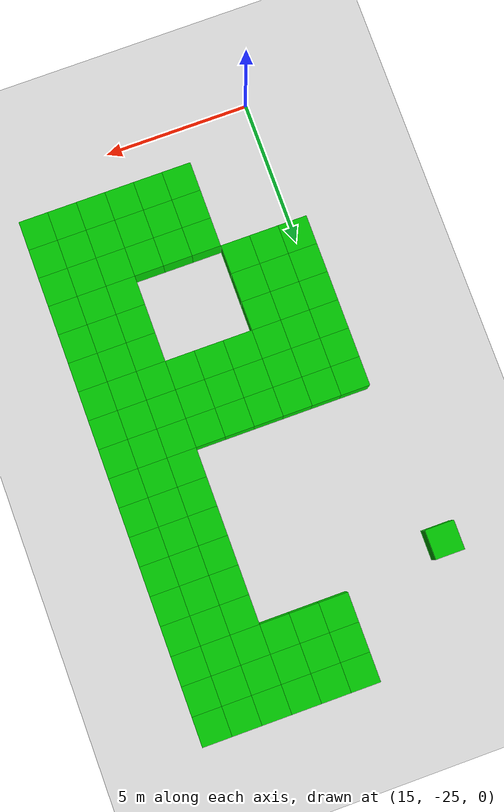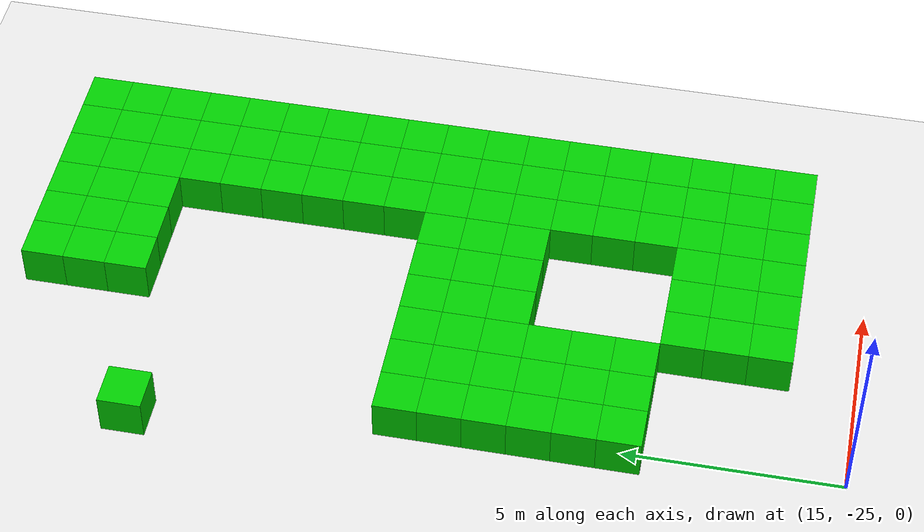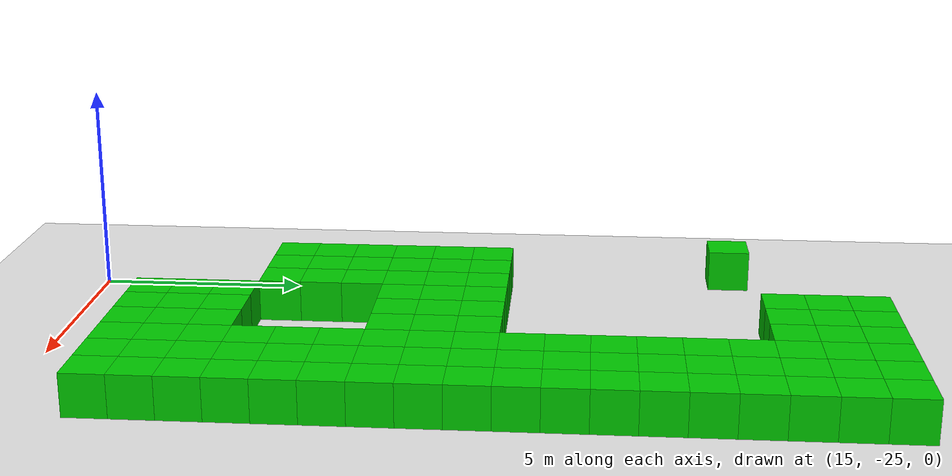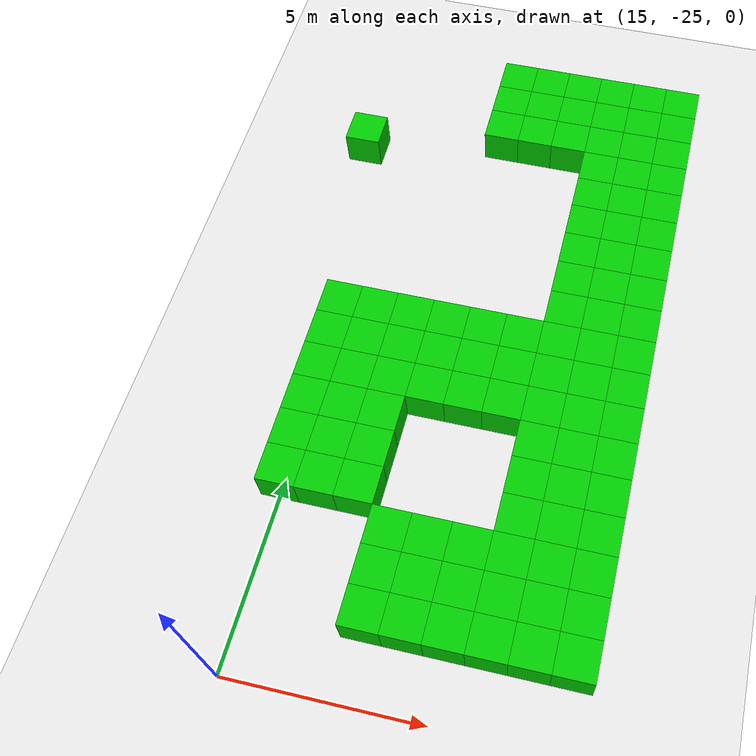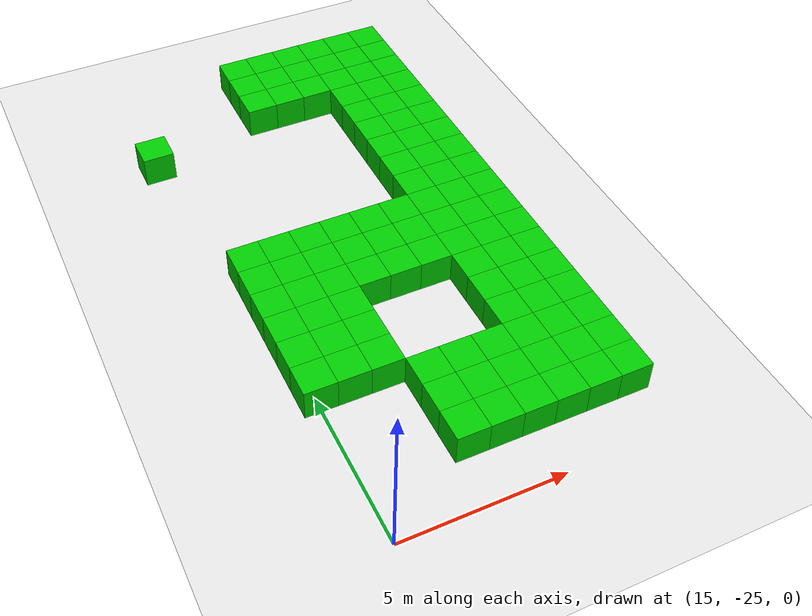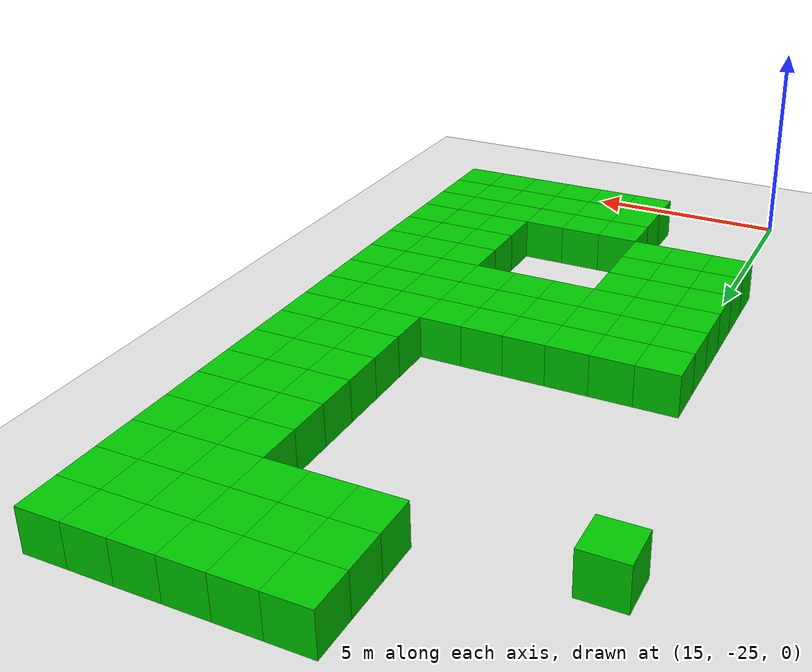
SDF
<sdf version="1.6">
 <world name="generated_maze">
  <model name="ground_plane">
   <static>true</static>
   <link name="link">
    <collision name="collision">
     <geometry><plane><normal>0 0 1</normal><size>100 100</size></plane></geometry>
    </collision>
    <visual name="visual">
     <geometry><plane><normal>0 0 1</normal><size>100 100</size></plane></geometry>
     <material>
      <ambient>0.9 0.9 0.9 1</ambient>
      <diffuse>0.9 0.9 0.9 1</diffuse>
      <specular>0.3 0.3 0.3 1</specular>
     </material>
    </visual>
   </link>
  </model>
  <model name="wall_30_42">
   <static>true</static>
   <pose>18 -6 0.5 0 0 0</pose>
   <link name="link">
    <collision name="collision"><geometry><box><size>1 1 1</size></box></geometry></collision>
    <visual name="visual">
     <geometry><box><size>1 1 1</size></box></geometry>
     <material>
      <ambient>0.0 0.8 0.0 1</ambient>
      <diffuse>0.0 0.8 0.0 1</diffuse>
      <specular>0.1 0.1 0.1 1</specular>
     </material>
    </visual>
   </link>
  </model>
  <model name="wall_30_43">
   <static>true</static>
   <pose>19 -6 0.5 0 0 0</pose>
   <link name="link">
    <collision name="collision"><geometry><box><size>1 1 1</size></box></geometry></collision>
    <visual name="visual">
     <geometry><box><size>1 1 1</size></box></geometry>
     <material>
      <ambient>0.0 0.8 0.0 1</ambient>
      <diffuse>0.0 0.8 0.0 1</diffuse>
      <specular>0.1 0.1 0.1 1</specular>
     </material>
    </visual>
   </link>
  </model>
  <model name="wall_30_44">
   <static>true</static>
   <pose>20 -6 0.5 0 0 0</pose>
   <link name="link">
    <collision name="collision"><geometry><box><size>1 1 1</size></box></geometry></collision>
    <visual name="visual">
     <geometry><box><size>1 1 1</size></box></geometry>
     <material>
      <ambient>0.0 0.8 0.0 1</ambient>
      <diffuse>0.0 0.8 0.0 1</diffuse>
      <specular>0.1 0.1 0.1 1</specular>
     </material>
    </visual>
   </link>
  </model>
  <model name="wall_30_45">
   <static>true</static>
   <pose>21 -6 0.5 0 0 0</pose>
   <link name="link">
    <collision name="collision"><geometry><box><size>1 1 1</size></box></geometry></collision>
    <visual name="visual">
     <geometry><box><size>1 1 1</size></box></geometry>
     <material>
      <ambient>0.0 0.8 0.0 1</ambient>
      <diffuse>0.0 0.8 0.0 1</diffuse>
      <specular>0.1 0.1 0.1 1</specular>
     </material>
    </visual>
   </link>
  </model>
  <model name="wall_30_46">
   <static>true</static>
   <pose>22 -6 0.5 0 0 0</pose>
   <link name="link">
    <collision name="collision"><geometry><box><size>1 1 1</size></box></geometry></collision>
    <visual name="visual">
     <geometry><box><size>1 1 1</size></box></geometry>
     <material>
      <ambient>0.0 0.8 0.0 1</ambient>
      <diffuse>0.0 0.8 0.0 1</diffuse>
      <specular>0.1 0.1 0.1 1</specular>
     </material>
    </visual>
   </link>
  </model>
  <model name="wall_30_47">
   <static>true</static>
   <pose>23 -6 0.5 0 0 0</pose>
   <link name="link">
    <collision name="collision"><geometry><box><size>1 1 1</size></box></geometry></collision>
    <visual name="visual">
     <geometry><box><size>1 1 1</size></box></geometry>
     <material>
      <ambient>0.0 0.8 0.0 1</ambient>
      <diffuse>0.0 0.8 0.0 1</diffuse>
      <specular>0.1 0.1 0.1 1</specular>
     </material>
    </visual>
   </link>
  </model>
  <model name="wall_31_42">
   <static>true</static>
   <pose>18 -7 0.5 0 0 0</pose>
   <link name="link">
    <collision name="collision"><geometry><box><size>1 1 1</size></box></geometry></collision>
    <visual name="visual">
     <geometry><box><size>1 1 1</size></box></geometry>
     <material>
      <ambient>0.0 0.8 0.0 1</ambient>
      <diffuse>0.0 0.8 0.0 1</diffuse>
      <specular>0.1 0.1 0.1 1</specular>
     </material>
    </visual>
   </link>
  </model>
  <model name="wall_31_43">
   <static>true</static>
   <pose>19 -7 0.5 0 0 0</pose>
   <link name="link">
    <collision name="collision"><geometry><box><size>1 1 1</size></box></geometry></collision>
    <visual name="visual">
     <geometry><box><size>1 1 1</size></box></geometry>
     <material>
      <ambient>0.0 0.8 0.0 1</ambient>
      <diffuse>0.0 0.8 0.0 1</diffuse>
      <specular>0.1 0.1 0.1 1</specular>
     </material>
    </visual>
   </link>
  </model>
  <model name="wall_31_44">
   <static>true</static>
   <pose>20 -7 0.5 0 0 0</pose>
   <link name="link">
    <collision name="collision"><geometry><box><size>1 1 1</size></box></geometry></collision>
    <visual name="visual">
     <geometry><box><size>1 1 1</size></box></geometry>
     <material>
      <ambient>0.0 0.8 0.0 1</ambient>
      <diffuse>0.0 0.8 0.0 1</diffuse>
      <specular>0.1 0.1 0.1 1</specular>
     </material>
    </visual>
   </link>
  </model>
  <model name="wall_31_45">
   <static>true</static>
   <pose>21 -7 0.5 0 0 0</pose>
   <link name="link">
    <collision name="collision"><geometry><box><size>1 1 1</size></box></geometry></collision>
    <visual name="visual">
     <geometry><box><size>1 1 1</size></box></geometry>
     <material>
      <ambient>0.0 0.8 0.0 1</ambient>
      <diffuse>0.0 0.8 0.0 1</diffuse>
      <specular>0.1 0.1 0.1 1</specular>
     </material>
    </visual>
   </link>
  </model>
  <model name="wall_31_46">
   <static>true</static>
   <pose>22 -7 0.5 0 0 0</pose>
   <link name="link">
    <collision name="collision"><geometry><box><size>1 1 1</size></box></geometry></collision>
    <visual name="visual">
     <geometry><box><size>1 1 1</size></box></geometry>
     <material>
      <ambient>0.0 0.8 0.0 1</ambient>
      <diffuse>0.0 0.8 0.0 1</diffuse>
      <specular>0.1 0.1 0.1 1</specular>
     </material>
    </visual>
   </link>
  </model>
  <model name="wall_31_47">
   <static>true</static>
   <pose>23 -7 0.5 0 0 0</pose>
   <link name="link">
    <collision name="collision"><geometry><box><size>1 1 1</size></box></geometry></collision>
    <visual name="visual">
     <geometry><box><size>1 1 1</size></box></geometry>
     <material>
      <ambient>0.0 0.8 0.0 1</ambient>
      <diffuse>0.0 0.8 0.0 1</diffuse>
      <specular>0.1 0.1 0.1 1</specular>
     </material>
    </visual>
   </link>
  </model>
  <model name="wall_32_42">
   <static>true</static>
   <pose>18 -8 0.5 0 0 0</pose>
   <link name="link">
    <collision name="collision"><geometry><box><size>1 1 1</size></box></geometry></collision>
    <visual name="visual">
     <geometry><box><size>1 1 1</size></box></geometry>
     <material>
      <ambient>0.0 0.8 0.0 1</ambient>
      <diffuse>0.0 0.8 0.0 1</diffuse>
      <specular>0.1 0.1 0.1 1</specular>
     </material>
    </visual>
   </link>
  </model>
  <model name="wall_32_43">
   <static>true</static>
   <pose>19 -8 0.5 0 0 0</pose>
   <link name="link">
    <collision name="collision"><geometry><box><size>1 1 1</size></box></geometry></collision>
    <visual name="visual">
     <geometry><box><size>1 1 1</size></box></geometry>
     <material>
      <ambient>0.0 0.8 0.0 1</ambient>
      <diffuse>0.0 0.8 0.0 1</diffuse>
      <specular>0.1 0.1 0.1 1</specular>
     </material>
    </visual>
   </link>
  </model>
  <model name="wall_32_44">
   <static>true</static>
   <pose>20 -8 0.5 0 0 0</pose>
   <link name="link">
    <collision name="collision"><geometry><box><size>1 1 1</size></box></geometry></collision>
    <visual name="visual">
     <geometry><box><size>1 1 1</size></box></geometry>
     <material>
      <ambient>0.0 0.8 0.0 1</ambient>
      <diffuse>0.0 0.8 0.0 1</diffuse>
      <specular>0.1 0.1 0.1 1</specular>
     </material>
    </visual>
   </link>
  </model>
  <model name="wall_32_45">
   <static>true</static>
   <pose>21 -8 0.5 0 0 0</pose>
   <link name="link">
    <collision name="collision"><geometry><box><size>1 1 1</size></box></geometry></collision>
    <visual name="visual">
     <geometry><box><size>1 1 1</size></box></geometry>
     <material>
      <ambient>0.0 0.8 0.0 1</ambient>
      <diffuse>0.0 0.8 0.0 1</diffuse>
      <specular>0.1 0.1 0.1 1</specular>
     </material>
    </visual>
   </link>
  </model>
  <model name="wall_32_46">
   <static>true</static>
   <pose>22 -8 0.5 0 0 0</pose>
   <link name="link">
    <collision name="collision"><geometry><box><size>1 1 1</size></box></geometry></collision>
    <visual name="visual">
     <geometry><box><size>1 1 1</size></box></geometry>
     <material>
      <ambient>0.0 0.8 0.0 1</ambient>
      <diffuse>0.0 0.8 0.0 1</diffuse>
      <specular>0.1 0.1 0.1 1</specular>
     </material>
    </visual>
   </link>
  </model>
  <model name="wall_32_47">
   <static>true</static>
   <pose>23 -8 0.5 0 0 0</pose>
   <link name="link">
    <collision name="collision"><geometry><box><size>1 1 1</size></box></geometry></collision>
    <visual name="visual">
     <geometry><box><size>1 1 1</size></box></geometry>
     <material>
      <ambient>0.0 0.8 0.0 1</ambient>
      <diffuse>0.0 0.8 0.0 1</diffuse>
      <specular>0.1 0.1 0.1 1</specular>
     </material>
    </visual>
   </link>
  </model>
  <model name="wall_33_38">
   <static>true</static>
   <pose>14 -9 0.5 0 0 0</pose>
   <link name="link">
    <collision name="collision"><geometry><box><size>1 1 1</size></box></geometry></collision>
    <visual name="visual">
     <geometry><box><size>1 1 1</size></box></geometry>
     <material>
      <ambient>0.0 0.8 0.0 1</ambient>
      <diffuse>0.0 0.8 0.0 1</diffuse>
      <specular>0.1 0.1 0.1 1</specular>
     </material>
    </visual>
   </link>
  </model>
  <model name="wall_33_45">
   <static>true</static>
   <pose>21 -9 0.5 0 0 0</pose>
   <link name="link">
    <collision name="collision"><geometry><box><size>1 1 1</size></box></geometry></collision>
    <visual name="visual">
     <geometry><box><size>1 1 1</size></box></geometry>
     <material>
      <ambient>0.0 0.8 0.0 1</ambient>
      <diffuse>0.0 0.8 0.0 1</diffuse>
      <specular>0.1 0.1 0.1 1</specular>
     </material>
    </visual>
   </link>
  </model>
  <model name="wall_33_46">
   <static>true</static>
   <pose>22 -9 0.5 0 0 0</pose>
   <link name="link">
    <collision name="collision"><geometry><box><size>1 1 1</size></box></geometry></collision>
    <visual name="visual">
     <geometry><box><size>1 1 1</size></box></geometry>
     <material>
      <ambient>0.0 0.8 0.0 1</ambient>
      <diffuse>0.0 0.8 0.0 1</diffuse>
      <specular>0.1 0.1 0.1 1</specular>
     </material>
    </visual>
   </link>
  </model>
  <model name="wall_33_47">
   <static>true</static>
   <pose>23 -9 0.5 0 0 0</pose>
   <link name="link">
    <collision name="collision"><geometry><box><size>1 1 1</size></box></geometry></collision>
    <visual name="visual">
     <geometry><box><size>1 1 1</size></box></geometry>
     <material>
      <ambient>0.0 0.8 0.0 1</ambient>
      <diffuse>0.0 0.8 0.0 1</diffuse>
      <specular>0.1 0.1 0.1 1</specular>
     </material>
    </visual>
   </link>
  </model>
  <model name="wall_34_45">
   <static>true</static>
   <pose>21 -10 0.5 0 0 0</pose>
   <link name="link">
    <collision name="collision"><geometry><box><size>1 1 1</size></box></geometry></collision>
    <visual name="visual">
     <geometry><box><size>1 1 1</size></box></geometry>
     <material>
      <ambient>0.0 0.8 0.0 1</ambient>
      <diffuse>0.0 0.8 0.0 1</diffuse>
      <specular>0.1 0.1 0.1 1</specular>
     </material>
    </visual>
   </link>
  </model>
  <model name="wall_34_46">
   <static>true</static>
   <pose>22 -10 0.5 0 0 0</pose>
   <link name="link">
    <collision name="collision"><geometry><box><size>1 1 1</size></box></geometry></collision>
    <visual name="visual">
     <geometry><box><size>1 1 1</size></box></geometry>
     <material>
      <ambient>0.0 0.8 0.0 1</ambient>
      <diffuse>0.0 0.8 0.0 1</diffuse>
      <specular>0.1 0.1 0.1 1</specular>
     </material>
    </visual>
   </link>
  </model>
  <model name="wall_34_47">
   <static>true</static>
   <pose>23 -10 0.5 0 0 0</pose>
   <link name="link">
    <collision name="collision"><geometry><box><size>1 1 1</size></box></geometry></collision>
    <visual name="visual">
     <geometry><box><size>1 1 1</size></box></geometry>
     <material>
      <ambient>0.0 0.8 0.0 1</ambient>
      <diffuse>0.0 0.8 0.0 1</diffuse>
      <specular>0.1 0.1 0.1 1</specular>
     </material>
    </visual>
   </link>
  </model>
  <model name="wall_35_45">
   <static>true</static>
   <pose>21 -11 0.5 0 0 0</pose>
   <link name="link">
    <collision name="collision"><geometry><box><size>1 1 1</size></box></geometry></collision>
    <visual name="visual">
     <geometry><box><size>1 1 1</size></box></geometry>
     <material>
      <ambient>0.0 0.8 0.0 1</ambient>
      <diffuse>0.0 0.8 0.0 1</diffuse>
      <specular>0.1 0.1 0.1 1</specular>
     </material>
    </visual>
   </link>
  </model>
  <model name="wall_35_46">
   <static>true</static>
   <pose>22 -11 0.5 0 0 0</pose>
   <link name="link">
    <collision name="collision"><geometry><box><size>1 1 1</size></box></geometry></collision>
    <visual name="visual">
     <geometry><box><size>1 1 1</size></box></geometry>
     <material>
      <ambient>0.0 0.8 0.0 1</ambient>
      <diffuse>0.0 0.8 0.0 1</diffuse>
      <specular>0.1 0.1 0.1 1</specular>
     </material>
    </visual>
   </link>
  </model>
  <model name="wall_35_47">
   <static>true</static>
   <pose>23 -11 0.5 0 0 0</pose>
   <link name="link">
    <collision name="collision"><geometry><box><size>1 1 1</size></box></geometry></collision>
    <visual name="visual">
     <geometry><box><size>1 1 1</size></box></geometry>
     <material>
      <ambient>0.0 0.8 0.0 1</ambient>
      <diffuse>0.0 0.8 0.0 1</diffuse>
      <specular>0.1 0.1 0.1 1</specular>
     </material>
    </visual>
   </link>
  </model>
  <model name="wall_36_45">
   <static>true</static>
   <pose>21 -12 0.5 0 0 0</pose>
   <link name="link">
    <collision name="collision"><geometry><box><size>1 1 1</size></box></geometry></collision>
    <visual name="visual">
     <geometry><box><size>1 1 1</size></box></geometry>
     <material>
      <ambient>0.0 0.8 0.0 1</ambient>
      <diffuse>0.0 0.8 0.0 1</diffuse>
      <specular>0.1 0.1 0.1 1</specular>
     </material>
    </visual>
   </link>
  </model>
  <model name="wall_36_46">
   <static>true</static>
   <pose>22 -12 0.5 0 0 0</pose>
   <link name="link">
    <collision name="collision"><geometry><box><size>1 1 1</size></box></geometry></collision>
    <visual name="visual">
     <geometry><box><size>1 1 1</size></box></geometry>
     <material>
      <ambient>0.0 0.8 0.0 1</ambient>
      <diffuse>0.0 0.8 0.0 1</diffuse>
      <specular>0.1 0.1 0.1 1</specular>
     </material>
    </visual>
   </link>
  </model>
  <model name="wall_36_47">
   <static>true</static>
   <pose>23 -12 0.5 0 0 0</pose>
   <link name="link">
    <collision name="collision"><geometry><box><size>1 1 1</size></box></geometry></collision>
    <visual name="visual">
     <geometry><box><size>1 1 1</size></box></geometry>
     <material>
      <ambient>0.0 0.8 0.0 1</ambient>
      <diffuse>0.0 0.8 0.0 1</diffuse>
      <specular>0.1 0.1 0.1 1</specular>
     </material>
    </visual>
   </link>
  </model>
  <model name="wall_37_45">
   <static>true</static>
   <pose>21 -13 0.5 0 0 0</pose>
   <link name="link">
    <collision name="collision"><geometry><box><size>1 1 1</size></box></geometry></collision>
    <visual name="visual">
     <geometry><box><size>1 1 1</size></box></geometry>
     <material>
      <ambient>0.0 0.8 0.0 1</ambient>
      <diffuse>0.0 0.8 0.0 1</diffuse>
      <specular>0.1 0.1 0.1 1</specular>
     </material>
    </visual>
   </link>
  </model>
  <model name="wall_37_46">
   <static>true</static>
   <pose>22 -13 0.5 0 0 0</pose>
   <link name="link">
    <collision name="collision"><geometry><box><size>1 1 1</size></box></geometry></collision>
    <visual name="visual">
     <geometry><box><size>1 1 1</size></box></geometry>
     <material>
      <ambient>0.0 0.8 0.0 1</ambient>
      <diffuse>0.0 0.8 0.0 1</diffuse>
      <specular>0.1 0.1 0.1 1</specular>
     </material>
    </visual>
   </link>
  </model>
  <model name="wall_37_47">
   <static>true</static>
   <pose>23 -13 0.5 0 0 0</pose>
   <link name="link">
    <collision name="collision"><geometry><box><size>1 1 1</size></box></geometry></collision>
    <visual name="visual">
     <geometry><box><size>1 1 1</size></box></geometry>
     <material>
      <ambient>0.0 0.8 0.0 1</ambient>
      <diffuse>0.0 0.8 0.0 1</diffuse>
      <specular>0.1 0.1 0.1 1</specular>
     </material>
    </visual>
   </link>
  </model>
  <model name="wall_38_45">
   <static>true</static>
   <pose>21 -14 0.5 0 0 0</pose>
   <link name="link">
    <collision name="collision"><geometry><box><size>1 1 1</size></box></geometry></collision>
    <visual name="visual">
     <geometry><box><size>1 1 1</size></box></geometry>
     <material>
      <ambient>0.0 0.8 0.0 1</ambient>
      <diffuse>0.0 0.8 0.0 1</diffuse>
      <specular>0.1 0.1 0.1 1</specular>
     </material>
    </visual>
   </link>
  </model>
  <model name="wall_38_46">
   <static>true</static>
   <pose>22 -14 0.5 0 0 0</pose>
   <link name="link">
    <collision name="collision"><geometry><box><size>1 1 1</size></box></geometry></collision>
    <visual name="visual">
     <geometry><box><size>1 1 1</size></box></geometry>
     <material>
      <ambient>0.0 0.8 0.0 1</ambient>
      <diffuse>0.0 0.8 0.0 1</diffuse>
      <specular>0.1 0.1 0.1 1</specular>
     </material>
    </visual>
   </link>
  </model>
  <model name="wall_38_47">
   <static>true</static>
   <pose>23 -14 0.5 0 0 0</pose>
   <link name="link">
    <collision name="collision"><geometry><box><size>1 1 1</size></box></geometry></collision>
    <visual name="visual">
     <geometry><box><size>1 1 1</size></box></geometry>
     <material>
      <ambient>0.0 0.8 0.0 1</ambient>
      <diffuse>0.0 0.8 0.0 1</diffuse>
      <specular>0.1 0.1 0.1 1</specular>
     </material>
    </visual>
   </link>
  </model>
  <model name="wall_39_39">
   <static>true</static>
   <pose>15 -15 0.5 0 0 0</pose>
   <link name="link">
    <collision name="collision"><geometry><box><size>1 1 1</size></box></geometry></collision>
    <visual name="visual">
     <geometry><box><size>1 1 1</size></box></geometry>
     <material>
      <ambient>0.0 0.8 0.0 1</ambient>
      <diffuse>0.0 0.8 0.0 1</diffuse>
      <specular>0.1 0.1 0.1 1</specular>
     </material>
    </visual>
   </link>
  </model>
  <model name="wall_39_40">
   <static>true</static>
   <pose>16 -15 0.5 0 0 0</pose>
   <link name="link">
    <collision name="collision"><geometry><box><size>1 1 1</size></box></geometry></collision>
    <visual name="visual">
     <geometry><box><size>1 1 1</size></box></geometry>
     <material>
      <ambient>0.0 0.8 0.0 1</ambient>
      <diffuse>0.0 0.8 0.0 1</diffuse>
      <specular>0.1 0.1 0.1 1</specular>
     </material>
    </visual>
   </link>
  </model>
  <model name="wall_39_41">
   <static>true</static>
   <pose>17 -15 0.5 0 0 0</pose>
   <link name="link">
    <collision name="collision"><geometry><box><size>1 1 1</size></box></geometry></collision>
    <visual name="visual">
     <geometry><box><size>1 1 1</size></box></geometry>
     <material>
      <ambient>0.0 0.8 0.0 1</ambient>
      <diffuse>0.0 0.8 0.0 1</diffuse>
      <specular>0.1 0.1 0.1 1</specular>
     </material>
    </visual>
   </link>
  </model>
  <model name="wall_39_42">
   <static>true</static>
   <pose>18 -15 0.5 0 0 0</pose>
   <link name="link">
    <collision name="collision"><geometry><box><size>1 1 1</size></box></geometry></collision>
    <visual name="visual">
     <geometry><box><size>1 1 1</size></box></geometry>
     <material>
      <ambient>0.0 0.8 0.0 1</ambient>
      <diffuse>0.0 0.8 0.0 1</diffuse>
      <specular>0.1 0.1 0.1 1</specular>
     </material>
    </visual>
   </link>
  </model>
  <model name="wall_39_43">
   <static>true</static>
   <pose>19 -15 0.5 0 0 0</pose>
   <link name="link">
    <collision name="collision"><geometry><box><size>1 1 1</size></box></geometry></collision>
    <visual name="visual">
     <geometry><box><size>1 1 1</size></box></geometry>
     <material>
      <ambient>0.0 0.8 0.0 1</ambient>
      <diffuse>0.0 0.8 0.0 1</diffuse>
      <specular>0.1 0.1 0.1 1</specular>
     </material>
    </visual>
   </link>
  </model>
  <model name="wall_39_44">
   <static>true</static>
   <pose>20 -15 0.5 0 0 0</pose>
   <link name="link">
    <collision name="collision"><geometry><box><size>1 1 1</size></box></geometry></collision>
    <visual name="visual">
     <geometry><box><size>1 1 1</size></box></geometry>
     <material>
      <ambient>0.0 0.8 0.0 1</ambient>
      <diffuse>0.0 0.8 0.0 1</diffuse>
      <specular>0.1 0.1 0.1 1</specular>
     </material>
    </visual>
   </link>
  </model>
  <model name="wall_39_45">
   <static>true</static>
   <pose>21 -15 0.5 0 0 0</pose>
   <link name="link">
    <collision name="collision"><geometry><box><size>1 1 1</size></box></geometry></collision>
    <visual name="visual">
     <geometry><box><size>1 1 1</size></box></geometry>
     <material>
      <ambient>0.0 0.8 0.0 1</ambient>
      <diffuse>0.0 0.8 0.0 1</diffuse>
      <specular>0.1 0.1 0.1 1</specular>
     </material>
    </visual>
   </link>
  </model>
  <model name="wall_39_46">
   <static>true</static>
   <pose>22 -15 0.5 0 0 0</pose>
   <link name="link">
    <collision name="collision"><geometry><box><size>1 1 1</size></box></geometry></collision>
    <visual name="visual">
     <geometry><box><size>1 1 1</size></box></geometry>
     <material>
      <ambient>0.0 0.8 0.0 1</ambient>
      <diffuse>0.0 0.8 0.0 1</diffuse>
      <specular>0.1 0.1 0.1 1</specular>
     </material>
    </visual>
   </link>
  </model>
  <model name="wall_39_47">
   <static>true</static>
   <pose>23 -15 0.5 0 0 0</pose>
   <link name="link">
    <collision name="collision"><geometry><box><size>1 1 1</size></box></geometry></collision>
    <visual name="visual">
     <geometry><box><size>1 1 1</size></box></geometry>
     <material>
      <ambient>0.0 0.8 0.0 1</ambient>
      <diffuse>0.0 0.8 0.0 1</diffuse>
      <specular>0.1 0.1 0.1 1</specular>
     </material>
    </visual>
   </link>
  </model>
  <model name="wall_40_39">
   <static>true</static>
   <pose>15 -16 0.5 0 0 0</pose>
   <link name="link">
    <collision name="collision"><geometry><box><size>1 1 1</size></box></geometry></collision>
    <visual name="visual">
     <geometry><box><size>1 1 1</size></box></geometry>
     <material>
      <ambient>0.0 0.8 0.0 1</ambient>
      <diffuse>0.0 0.8 0.0 1</diffuse>
      <specular>0.1 0.1 0.1 1</specular>
     </material>
    </visual>
   </link>
  </model>
  <model name="wall_40_40">
   <static>true</static>
   <pose>16 -16 0.5 0 0 0</pose>
   <link name="link">
    <collision name="collision"><geometry><box><size>1 1 1</size></box></geometry></collision>
    <visual name="visual">
     <geometry><box><size>1 1 1</size></box></geometry>
     <material>
      <ambient>0.0 0.8 0.0 1</ambient>
      <diffuse>0.0 0.8 0.0 1</diffuse>
      <specular>0.1 0.1 0.1 1</specular>
     </material>
    </visual>
   </link>
  </model>
  <model name="wall_40_41">
   <static>true</static>
   <pose>17 -16 0.5 0 0 0</pose>
   <link name="link">
    <collision name="collision"><geometry><box><size>1 1 1</size></box></geometry></collision>
    <visual name="visual">
     <geometry><box><size>1 1 1</size></box></geometry>
     <material>
      <ambient>0.0 0.8 0.0 1</ambient>
      <diffuse>0.0 0.8 0.0 1</diffuse>
      <specular>0.1 0.1 0.1 1</specular>
     </material>
    </visual>
   </link>
  </model>
  <model name="wall_40_42">
   <static>true</static>
   <pose>18 -16 0.5 0 0 0</pose>
   <link name="link">
    <collision name="collision"><geometry><box><size>1 1 1</size></box></geometry></collision>
    <visual name="visual">
     <geometry><box><size>1 1 1</size></box></geometry>
     <material>
      <ambient>0.0 0.8 0.0 1</ambient>
      <diffuse>0.0 0.8 0.0 1</diffuse>
      <specular>0.1 0.1 0.1 1</specular>
     </material>
    </visual>
   </link>
  </model>
  <model name="wall_40_43">
   <static>true</static>
   <pose>19 -16 0.5 0 0 0</pose>
   <link name="link">
    <collision name="collision"><geometry><box><size>1 1 1</size></box></geometry></collision>
    <visual name="visual">
     <geometry><box><size>1 1 1</size></box></geometry>
     <material>
      <ambient>0.0 0.8 0.0 1</ambient>
      <diffuse>0.0 0.8 0.0 1</diffuse>
      <specular>0.1 0.1 0.1 1</specular>
     </material>
    </visual>
   </link>
  </model>
  <model name="wall_40_44">
   <static>true</static>
   <pose>20 -16 0.5 0 0 0</pose>
   <link name="link">
    <collision name="collision"><geometry><box><size>1 1 1</size></box></geometry></collision>
    <visual name="visual">
     <geometry><box><size>1 1 1</size></box></geometry>
     <material>
      <ambient>0.0 0.8 0.0 1</ambient>
      <diffuse>0.0 0.8 0.0 1</diffuse>
      <specular>0.1 0.1 0.1 1</specular>
     </material>
    </visual>
   </link>
  </model>
  <model name="wall_40_45">
   <static>true</static>
   <pose>21 -16 0.5 0 0 0</pose>
   <link name="link">
    <collision name="collision"><geometry><box><size>1 1 1</size></box></geometry></collision>
    <visual name="visual">
     <geometry><box><size>1 1 1</size></box></geometry>
     <material>
      <ambient>0.0 0.8 0.0 1</ambient>
      <diffuse>0.0 0.8 0.0 1</diffuse>
      <specular>0.1 0.1 0.1 1</specular>
     </material>
    </visual>
   </link>
  </model>
  <model name="wall_40_46">
   <static>true</static>
   <pose>22 -16 0.5 0 0 0</pose>
   <link name="link">
    <collision name="collision"><geometry><box><size>1 1 1</size></box></geometry></collision>
    <visual name="visual">
     <geometry><box><size>1 1 1</size></box></geometry>
     <material>
      <ambient>0.0 0.8 0.0 1</ambient>
      <diffuse>0.0 0.8 0.0 1</diffuse>
      <specular>0.1 0.1 0.1 1</specular>
     </material>
    </visual>
   </link>
  </model>
  <model name="wall_40_47">
   <static>true</static>
   <pose>23 -16 0.5 0 0 0</pose>
   <link name="link">
    <collision name="collision"><geometry><box><size>1 1 1</size></box></geometry></collision>
    <visual name="visual">
     <geometry><box><size>1 1 1</size></box></geometry>
     <material>
      <ambient>0.0 0.8 0.0 1</ambient>
      <diffuse>0.0 0.8 0.0 1</diffuse>
      <specular>0.1 0.1 0.1 1</specular>
     </material>
    </visual>
   </link>
  </model>
  <model name="wall_41_39">
   <static>true</static>
   <pose>15 -17 0.5 0 0 0</pose>
   <link name="link">
    <collision name="collision"><geometry><box><size>1 1 1</size></box></geometry></collision>
    <visual name="visual">
     <geometry><box><size>1 1 1</size></box></geometry>
     <material>
      <ambient>0.0 0.8 0.0 1</ambient>
      <diffuse>0.0 0.8 0.0 1</diffuse>
      <specular>0.1 0.1 0.1 1</specular>
     </material>
    </visual>
   </link>
  </model>
  <model name="wall_41_40">
   <static>true</static>
   <pose>16 -17 0.5 0 0 0</pose>
   <link name="link">
    <collision name="collision"><geometry><box><size>1 1 1</size></box></geometry></collision>
    <visual name="visual">
     <geometry><box><size>1 1 1</size></box></geometry>
     <material>
      <ambient>0.0 0.8 0.0 1</ambient>
      <diffuse>0.0 0.8 0.0 1</diffuse>
      <specular>0.1 0.1 0.1 1</specular>
     </material>
    </visual>
   </link>
  </model>
  <model name="wall_41_41">
   <static>true</static>
   <pose>17 -17 0.5 0 0 0</pose>
   <link name="link">
    <collision name="collision"><geometry><box><size>1 1 1</size></box></geometry></collision>
    <visual name="visual">
     <geometry><box><size>1 1 1</size></box></geometry>
     <material>
      <ambient>0.0 0.8 0.0 1</ambient>
      <diffuse>0.0 0.8 0.0 1</diffuse>
      <specular>0.1 0.1 0.1 1</specular>
     </material>
    </visual>
   </link>
  </model>
  <model name="wall_41_42">
   <static>true</static>
   <pose>18 -17 0.5 0 0 0</pose>
   <link name="link">
    <collision name="collision"><geometry><box><size>1 1 1</size></box></geometry></collision>
    <visual name="visual">
     <geometry><box><size>1 1 1</size></box></geometry>
     <material>
      <ambient>0.0 0.8 0.0 1</ambient>
      <diffuse>0.0 0.8 0.0 1</diffuse>
      <specular>0.1 0.1 0.1 1</specular>
     </material>
    </visual>
   </link>
  </model>
  <model name="wall_41_43">
   <static>true</static>
   <pose>19 -17 0.5 0 0 0</pose>
   <link name="link">
    <collision name="collision"><geometry><box><size>1 1 1</size></box></geometry></collision>
    <visual name="visual">
     <geometry><box><size>1 1 1</size></box></geometry>
     <material>
      <ambient>0.0 0.8 0.0 1</ambient>
      <diffuse>0.0 0.8 0.0 1</diffuse>
      <specular>0.1 0.1 0.1 1</specular>
     </material>
    </visual>
   </link>
  </model>
  <model name="wall_41_44">
   <static>true</static>
   <pose>20 -17 0.5 0 0 0</pose>
   <link name="link">
    <collision name="collision"><geometry><box><size>1 1 1</size></box></geometry></collision>
    <visual name="visual">
     <geometry><box><size>1 1 1</size></box></geometry>
     <material>
      <ambient>0.0 0.8 0.0 1</ambient>
      <diffuse>0.0 0.8 0.0 1</diffuse>
      <specular>0.1 0.1 0.1 1</specular>
     </material>
    </visual>
   </link>
  </model>
  <model name="wall_41_45">
   <static>true</static>
   <pose>21 -17 0.5 0 0 0</pose>
   <link name="link">
    <collision name="collision"><geometry><box><size>1 1 1</size></box></geometry></collision>
    <visual name="visual">
     <geometry><box><size>1 1 1</size></box></geometry>
     <material>
      <ambient>0.0 0.8 0.0 1</ambient>
      <diffuse>0.0 0.8 0.0 1</diffuse>
      <specular>0.1 0.1 0.1 1</specular>
     </material>
    </visual>
   </link>
  </model>
  <model name="wall_41_46">
   <static>true</static>
   <pose>22 -17 0.5 0 0 0</pose>
   <link name="link">
    <collision name="collision"><geometry><box><size>1 1 1</size></box></geometry></collision>
    <visual name="visual">
     <geometry><box><size>1 1 1</size></box></geometry>
     <material>
      <ambient>0.0 0.8 0.0 1</ambient>
      <diffuse>0.0 0.8 0.0 1</diffuse>
      <specular>0.1 0.1 0.1 1</specular>
     </material>
    </visual>
   </link>
  </model>
  <model name="wall_41_47">
   <static>true</static>
   <pose>23 -17 0.5 0 0 0</pose>
   <link name="link">
    <collision name="collision"><geometry><box><size>1 1 1</size></box></geometry></collision>
    <visual name="visual">
     <geometry><box><size>1 1 1</size></box></geometry>
     <material>
      <ambient>0.0 0.8 0.0 1</ambient>
      <diffuse>0.0 0.8 0.0 1</diffuse>
      <specular>0.1 0.1 0.1 1</specular>
     </material>
    </visual>
   </link>
  </model>
  <model name="wall_42_39">
   <static>true</static>
   <pose>15 -18 0.5 0 0 0</pose>
   <link name="link">
    <collision name="collision"><geometry><box><size>1 1 1</size></box></geometry></collision>
    <visual name="visual">
     <geometry><box><size>1 1 1</size></box></geometry>
     <material>
      <ambient>0.0 0.8 0.0 1</ambient>
      <diffuse>0.0 0.8 0.0 1</diffuse>
      <specular>0.1 0.1 0.1 1</specular>
     </material>
    </visual>
   </link>
  </model>
  <model name="wall_42_40">
   <static>true</static>
   <pose>16 -18 0.5 0 0 0</pose>
   <link name="link">
    <collision name="collision"><geometry><box><size>1 1 1</size></box></geometry></collision>
    <visual name="visual">
     <geometry><box><size>1 1 1</size></box></geometry>
     <material>
      <ambient>0.0 0.8 0.0 1</ambient>
      <diffuse>0.0 0.8 0.0 1</diffuse>
      <specular>0.1 0.1 0.1 1</specular>
     </material>
    </visual>
   </link>
  </model>
  <model name="wall_42_41">
   <static>true</static>
   <pose>17 -18 0.5 0 0 0</pose>
   <link name="link">
    <collision name="collision"><geometry><box><size>1 1 1</size></box></geometry></collision>
    <visual name="visual">
     <geometry><box><size>1 1 1</size></box></geometry>
     <material>
      <ambient>0.0 0.8 0.0 1</ambient>
      <diffuse>0.0 0.8 0.0 1</diffuse>
      <specular>0.1 0.1 0.1 1</specular>
     </material>
    </visual>
   </link>
  </model>
  <model name="wall_42_45">
   <static>true</static>
   <pose>21 -18 0.5 0 0 0</pose>
   <link name="link">
    <collision name="collision"><geometry><box><size>1 1 1</size></box></geometry></collision>
    <visual name="visual">
     <geometry><box><size>1 1 1</size></box></geometry>
     <material>
      <ambient>0.0 0.8 0.0 1</ambient>
      <diffuse>0.0 0.8 0.0 1</diffuse>
      <specular>0.1 0.1 0.1 1</specular>
     </material>
    </visual>
   </link>
  </model>
  <model name="wall_42_46">
   <static>true</static>
   <pose>22 -18 0.5 0 0 0</pose>
   <link name="link">
    <collision name="collision"><geometry><box><size>1 1 1</size></box></geometry></collision>
    <visual name="visual">
     <geometry><box><size>1 1 1</size></box></geometry>
     <material>
      <ambient>0.0 0.8 0.0 1</ambient>
      <diffuse>0.0 0.8 0.0 1</diffuse>
      <specular>0.1 0.1 0.1 1</specular>
     </material>
    </visual>
   </link>
  </model>
  <model name="wall_42_47">
   <static>true</static>
   <pose>23 -18 0.5 0 0 0</pose>
   <link name="link">
    <collision name="collision"><geometry><box><size>1 1 1</size></box></geometry></collision>
    <visual name="visual">
     <geometry><box><size>1 1 1</size></box></geometry>
     <material>
      <ambient>0.0 0.8 0.0 1</ambient>
      <diffuse>0.0 0.8 0.0 1</diffuse>
      <specular>0.1 0.1 0.1 1</specular>
     </material>
    </visual>
   </link>
  </model>
  <model name="wall_43_39">
   <static>true</static>
   <pose>15 -19 0.5 0 0 0</pose>
   <link name="link">
    <collision name="collision"><geometry><box><size>1 1 1</size></box></geometry></collision>
    <visual name="visual">
     <geometry><box><size>1 1 1</size></box></geometry>
     <material>
      <ambient>0.0 0.8 0.0 1</ambient>
      <diffuse>0.0 0.8 0.0 1</diffuse>
      <specular>0.1 0.1 0.1 1</specular>
     </material>
    </visual>
   </link>
  </model>
  <model name="wall_43_40">
   <static>true</static>
   <pose>16 -19 0.5 0 0 0</pose>
   <link name="link">
    <collision name="collision"><geometry><box><size>1 1 1</size></box></geometry></collision>
    <visual name="visual">
     <geometry><box><size>1 1 1</size></box></geometry>
     <material>
      <ambient>0.0 0.8 0.0 1</ambient>
      <diffuse>0.0 0.8 0.0 1</diffuse>
      <specular>0.1 0.1 0.1 1</specular>
     </material>
    </visual>
   </link>
  </model>
  <model name="wall_43_41">
   <static>true</static>
   <pose>17 -19 0.5 0 0 0</pose>
   <link name="link">
    <collision name="collision"><geometry><box><size>1 1 1</size></box></geometry></collision>
    <visual name="visual">
     <geometry><box><size>1 1 1</size></box></geometry>
     <material>
      <ambient>0.0 0.8 0.0 1</ambient>
      <diffuse>0.0 0.8 0.0 1</diffuse>
      <specular>0.1 0.1 0.1 1</specular>
     </material>
    </visual>
   </link>
  </model>
  <model name="wall_43_45">
   <static>true</static>
   <pose>21 -19 0.5 0 0 0</pose>
   <link name="link">
    <collision name="collision"><geometry><box><size>1 1 1</size></box></geometry></collision>
    <visual name="visual">
     <geometry><box><size>1 1 1</size></box></geometry>
     <material>
      <ambient>0.0 0.8 0.0 1</ambient>
      <diffuse>0.0 0.8 0.0 1</diffuse>
      <specular>0.1 0.1 0.1 1</specular>
     </material>
    </visual>
   </link>
  </model>
  <model name="wall_43_46">
   <static>true</static>
   <pose>22 -19 0.5 0 0 0</pose>
   <link name="link">
    <collision name="collision"><geometry><box><size>1 1 1</size></box></geometry></collision>
    <visual name="visual">
     <geometry><box><size>1 1 1</size></box></geometry>
     <material>
      <ambient>0.0 0.8 0.0 1</ambient>
      <diffuse>0.0 0.8 0.0 1</diffuse>
      <specular>0.1 0.1 0.1 1</specular>
     </material>
    </visual>
   </link>
  </model>
  <model name="wall_43_47">
   <static>true</static>
   <pose>23 -19 0.5 0 0 0</pose>
   <link name="link">
    <collision name="collision"><geometry><box><size>1 1 1</size></box></geometry></collision>
    <visual name="visual">
     <geometry><box><size>1 1 1</size></box></geometry>
     <material>
      <ambient>0.0 0.8 0.0 1</ambient>
      <diffuse>0.0 0.8 0.0 1</diffuse>
      <specular>0.1 0.1 0.1 1</specular>
     </material>
    </visual>
   </link>
  </model>
  <model name="wall_44_39">
   <static>true</static>
   <pose>15 -20 0.5 0 0 0</pose>
   <link name="link">
    <collision name="collision"><geometry><box><size>1 1 1</size></box></geometry></collision>
    <visual name="visual">
     <geometry><box><size>1 1 1</size></box></geometry>
     <material>
      <ambient>0.0 0.8 0.0 1</ambient>
      <diffuse>0.0 0.8 0.0 1</diffuse>
      <specular>0.1 0.1 0.1 1</specular>
     </material>
    </visual>
   </link>
  </model>
  <model name="wall_44_40">
   <static>true</static>
   <pose>16 -20 0.5 0 0 0</pose>
   <link name="link">
    <collision name="collision"><geometry><box><size>1 1 1</size></box></geometry></collision>
    <visual name="visual">
     <geometry><box><size>1 1 1</size></box></geometry>
     <material>
      <ambient>0.0 0.8 0.0 1</ambient>
      <diffuse>0.0 0.8 0.0 1</diffuse>
      <specular>0.1 0.1 0.1 1</specular>
     </material>
    </visual>
   </link>
  </model>
  <model name="wall_44_41">
   <static>true</static>
   <pose>17 -20 0.5 0 0 0</pose>
   <link name="link">
    <collision name="collision"><geometry><box><size>1 1 1</size></box></geometry></collision>
    <visual name="visual">
     <geometry><box><size>1 1 1</size></box></geometry>
     <material>
      <ambient>0.0 0.8 0.0 1</ambient>
      <diffuse>0.0 0.8 0.0 1</diffuse>
      <specular>0.1 0.1 0.1 1</specular>
     </material>
    </visual>
   </link>
  </model>
  <model name="wall_44_45">
   <static>true</static>
   <pose>21 -20 0.5 0 0 0</pose>
   <link name="link">
    <collision name="collision"><geometry><box><size>1 1 1</size></box></geometry></collision>
    <visual name="visual">
     <geometry><box><size>1 1 1</size></box></geometry>
     <material>
      <ambient>0.0 0.8 0.0 1</ambient>
      <diffuse>0.0 0.8 0.0 1</diffuse>
      <specular>0.1 0.1 0.1 1</specular>
     </material>
    </visual>
   </link>
  </model>
  <model name="wall_44_46">
   <static>true</static>
   <pose>22 -20 0.5 0 0 0</pose>
   <link name="link">
    <collision name="collision"><geometry><box><size>1 1 1</size></box></geometry></collision>
    <visual name="visual">
     <geometry><box><size>1 1 1</size></box></geometry>
     <material>
      <ambient>0.0 0.8 0.0 1</ambient>
      <diffuse>0.0 0.8 0.0 1</diffuse>
      <specular>0.1 0.1 0.1 1</specular>
     </material>
    </visual>
   </link>
  </model>
  <model name="wall_44_47">
   <static>true</static>
   <pose>23 -20 0.5 0 0 0</pose>
   <link name="link">
    <collision name="collision"><geometry><box><size>1 1 1</size></box></geometry></collision>
    <visual name="visual">
     <geometry><box><size>1 1 1</size></box></geometry>
     <material>
      <ambient>0.0 0.8 0.0 1</ambient>
      <diffuse>0.0 0.8 0.0 1</diffuse>
      <specular>0.1 0.1 0.1 1</specular>
     </material>
    </visual>
   </link>
  </model>
  <model name="wall_45_42">
   <static>true</static>
   <pose>18 -21 0.5 0 0 0</pose>
   <link name="link">
    <collision name="collision"><geometry><box><size>1 1 1</size></box></geometry></collision>
    <visual name="visual">
     <geometry><box><size>1 1 1</size></box></geometry>
     <material>
      <ambient>0.0 0.8 0.0 1</ambient>
      <diffuse>0.0 0.8 0.0 1</diffuse>
      <specular>0.1 0.1 0.1 1</specular>
     </material>
    </visual>
   </link>
  </model>
  <model name="wall_45_43">
   <static>true</static>
   <pose>19 -21 0.5 0 0 0</pose>
   <link name="link">
    <collision name="collision"><geometry><box><size>1 1 1</size></box></geometry></collision>
    <visual name="visual">
     <geometry><box><size>1 1 1</size></box></geometry>
     <material>
      <ambient>0.0 0.8 0.0 1</ambient>
      <diffuse>0.0 0.8 0.0 1</diffuse>
      <specular>0.1 0.1 0.1 1</specular>
     </material>
    </visual>
   </link>
  </model>
  <model name="wall_45_44">
   <static>true</static>
   <pose>20 -21 0.5 0 0 0</pose>
   <link name="link">
    <collision name="collision"><geometry><box><size>1 1 1</size></box></geometry></collision>
    <visual name="visual">
     <geometry><box><size>1 1 1</size></box></geometry>
     <material>
      <ambient>0.0 0.8 0.0 1</ambient>
      <diffuse>0.0 0.8 0.0 1</diffuse>
      <specular>0.1 0.1 0.1 1</specular>
     </material>
    </visual>
   </link>
  </model>
  <model name="wall_45_45">
   <static>true</static>
   <pose>21 -21 0.5 0 0 0</pose>
   <link name="link">
    <collision name="collision"><geometry><box><size>1 1 1</size></box></geometry></collision>
    <visual name="visual">
     <geometry><box><size>1 1 1</size></box></geometry>
     <material>
      <ambient>0.0 0.8 0.0 1</ambient>
      <diffuse>0.0 0.8 0.0 1</diffuse>
      <specular>0.1 0.1 0.1 1</specular>
     </material>
    </visual>
   </link>
  </model>
  <model name="wall_45_46">
   <static>true</static>
   <pose>22 -21 0.5 0 0 0</pose>
   <link name="link">
    <collision name="collision"><geometry><box><size>1 1 1</size></box></geometry></collision>
    <visual name="visual">
     <geometry><box><size>1 1 1</size></box></geometry>
     <material>
      <ambient>0.0 0.8 0.0 1</ambient>
      <diffuse>0.0 0.8 0.0 1</diffuse>
      <specular>0.1 0.1 0.1 1</specular>
     </material>
    </visual>
   </link>
  </model>
  <model name="wall_45_47">
   <static>true</static>
   <pose>23 -21 0.5 0 0 0</pose>
   <link name="link">
    <collision name="collision"><geometry><box><size>1 1 1</size></box></geometry></collision>
    <visual name="visual">
     <geometry><box><size>1 1 1</size></box></geometry>
     <material>
      <ambient>0.0 0.8 0.0 1</ambient>
      <diffuse>0.0 0.8 0.0 1</diffuse>
      <specular>0.1 0.1 0.1 1</specular>
     </material>
    </visual>
   </link>
  </model>
  <model name="wall_46_42">
   <static>true</static>
   <pose>18 -22 0.5 0 0 0</pose>
   <link name="link">
    <collision name="collision"><geometry><box><size>1 1 1</size></box></geometry></collision>
    <visual name="visual">
     <geometry><box><size>1 1 1</size></box></geometry>
     <material>
      <ambient>0.0 0.8 0.0 1</ambient>
      <diffuse>0.0 0.8 0.0 1</diffuse>
      <specular>0.1 0.1 0.1 1</specular>
     </material>
    </visual>
   </link>
  </model>
  <model name="wall_46_43">
   <static>true</static>
   <pose>19 -22 0.5 0 0 0</pose>
   <link name="link">
    <collision name="collision"><geometry><box><size>1 1 1</size></box></geometry></collision>
    <visual name="visual">
     <geometry><box><size>1 1 1</size></box></geometry>
     <material>
      <ambient>0.0 0.8 0.0 1</ambient>
      <diffuse>0.0 0.8 0.0 1</diffuse>
      <specular>0.1 0.1 0.1 1</specular>
     </material>
    </visual>
   </link>
  </model>
  <model name="wall_46_44">
   <static>true</static>
   <pose>20 -22 0.5 0 0 0</pose>
   <link name="link">
    <collision name="collision"><geometry><box><size>1 1 1</size></box></geometry></collision>
    <visual name="visual">
     <geometry><box><size>1 1 1</size></box></geometry>
     <material>
      <ambient>0.0 0.8 0.0 1</ambient>
      <diffuse>0.0 0.8 0.0 1</diffuse>
      <specular>0.1 0.1 0.1 1</specular>
     </material>
    </visual>
   </link>
  </model>
  <model name="wall_46_45">
   <static>true</static>
   <pose>21 -22 0.5 0 0 0</pose>
   <link name="link">
    <collision name="collision"><geometry><box><size>1 1 1</size></box></geometry></collision>
    <visual name="visual">
     <geometry><box><size>1 1 1</size></box></geometry>
     <material>
      <ambient>0.0 0.8 0.0 1</ambient>
      <diffuse>0.0 0.8 0.0 1</diffuse>
      <specular>0.1 0.1 0.1 1</specular>
     </material>
    </visual>
   </link>
  </model>
  <model name="wall_46_46">
   <static>true</static>
   <pose>22 -22 0.5 0 0 0</pose>
   <link name="link">
    <collision name="collision"><geometry><box><size>1 1 1</size></box></geometry></collision>
    <visual name="visual">
     <geometry><box><size>1 1 1</size></box></geometry>
     <material>
      <ambient>0.0 0.8 0.0 1</ambient>
      <diffuse>0.0 0.8 0.0 1</diffuse>
      <specular>0.1 0.1 0.1 1</specular>
     </material>
    </visual>
   </link>
  </model>
  <model name="wall_46_47">
   <static>true</static>
   <pose>23 -22 0.5 0 0 0</pose>
   <link name="link">
    <collision name="collision"><geometry><box><size>1 1 1</size></box></geometry></collision>
    <visual name="visual">
     <geometry><box><size>1 1 1</size></box></geometry>
     <material>
      <ambient>0.0 0.8 0.0 1</ambient>
      <diffuse>0.0 0.8 0.0 1</diffuse>
      <specular>0.1 0.1 0.1 1</specular>
     </material>
    </visual>
   </link>
  </model>
  <model name="wall_47_42">
   <static>true</static>
   <pose>18 -23 0.5 0 0 0</pose>
   <link name="link">
    <collision name="collision"><geometry><box><size>1 1 1</size></box></geometry></collision>
    <visual name="visual">
     <geometry><box><size>1 1 1</size></box></geometry>
     <material>
      <ambient>0.0 0.8 0.0 1</ambient>
      <diffuse>0.0 0.8 0.0 1</diffuse>
      <specular>0.1 0.1 0.1 1</specular>
     </material>
    </visual>
   </link>
  </model>
  <model name="wall_47_43">
   <static>true</static>
   <pose>19 -23 0.5 0 0 0</pose>
   <link name="link">
    <collision name="collision"><geometry><box><size>1 1 1</size></box></geometry></collision>
    <visual name="visual">
     <geometry><box><size>1 1 1</size></box></geometry>
     <material>
      <ambient>0.0 0.8 0.0 1</ambient>
      <diffuse>0.0 0.8 0.0 1</diffuse>
      <specular>0.1 0.1 0.1 1</specular>
     </material>
    </visual>
   </link>
  </model>
  <model name="wall_47_44">
   <static>true</static>
   <pose>20 -23 0.5 0 0 0</pose>
   <link name="link">
    <collision name="collision"><geometry><box><size>1 1 1</size></box></geometry></collision>
    <visual name="visual">
     <geometry><box><size>1 1 1</size></box></geometry>
     <material>
      <ambient>0.0 0.8 0.0 1</ambient>
      <diffuse>0.0 0.8 0.0 1</diffuse>
      <specular>0.1 0.1 0.1 1</specular>
     </material>
    </visual>
   </link>
  </model>
  <model name="wall_47_45">
   <static>true</static>
   <pose>21 -23 0.5 0 0 0</pose>
   <link name="link">
    <collision name="collision"><geometry><box><size>1 1 1</size></box></geometry></collision>
    <visual name="visual">
     <geometry><box><size>1 1 1</size></box></geometry>
     <material>
      <ambient>0.0 0.8 0.0 1</ambient>
      <diffuse>0.0 0.8 0.0 1</diffuse>
      <specular>0.1 0.1 0.1 1</specular>
     </material>
    </visual>
   </link>
  </model>
  <model name="wall_47_46">
   <static>true</static>
   <pose>22 -23 0.5 0 0 0</pose>
   <link name="link">
    <collision name="collision"><geometry><box><size>1 1 1</size></box></geometry></collision>
    <visual name="visual">
     <geometry><box><size>1 1 1</size></box></geometry>
     <material>
      <ambient>0.0 0.8 0.0 1</ambient>
      <diffuse>0.0 0.8 0.0 1</diffuse>
      <specular>0.1 0.1 0.1 1</specular>
     </material>
    </visual>
   </link>
  </model>
  <model name="wall_47_47">
   <static>true</static>
   <pose>23 -23 0.5 0 0 0</pose>
   <link name="link">
    <collision name="collision"><geometry><box><size>1 1 1</size></box></geometry></collision>
    <visual name="visual">
     <geometry><box><size>1 1 1</size></box></geometry>
     <material>
      <ambient>0.0 0.8 0.0 1</ambient>
      <diffuse>0.0 0.8 0.0 1</diffuse>
      <specular>0.1 0.1 0.1 1</specular>
     </material>
    </visual>
   </link>
  </model>
 </world>
</sdf>
